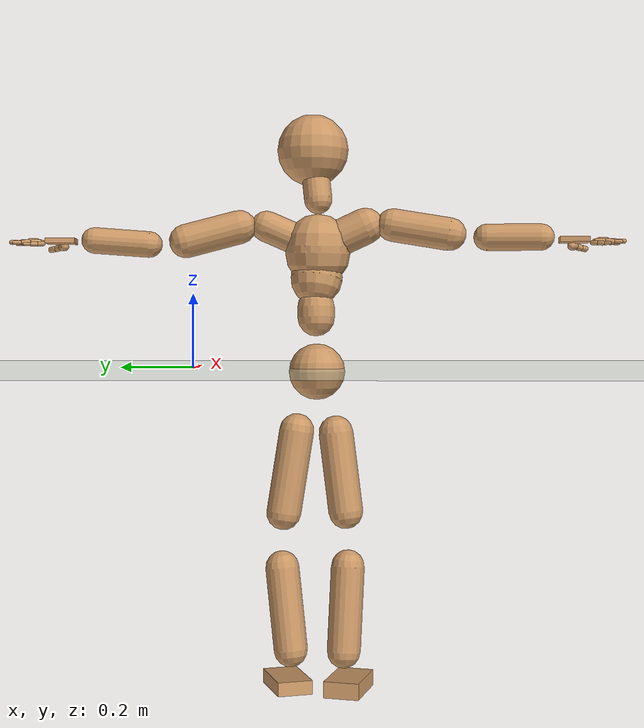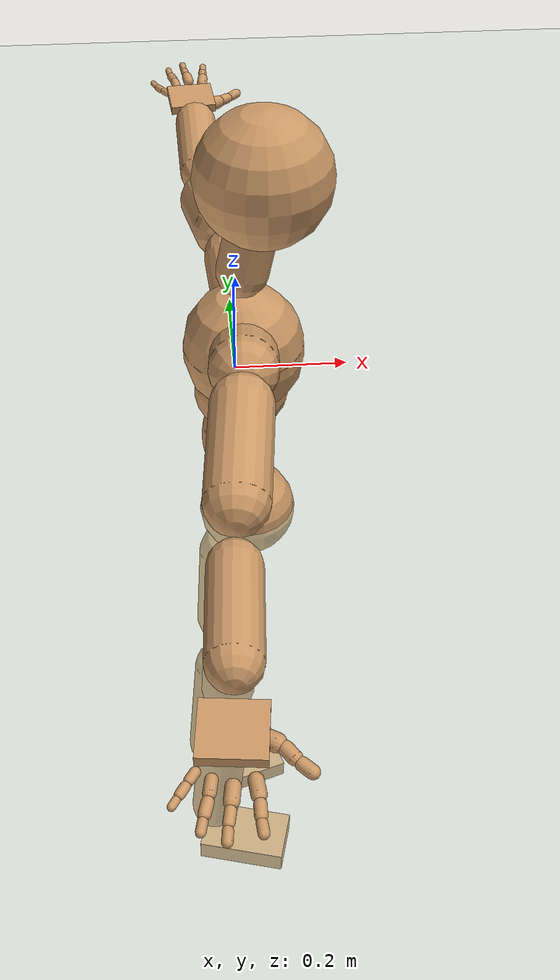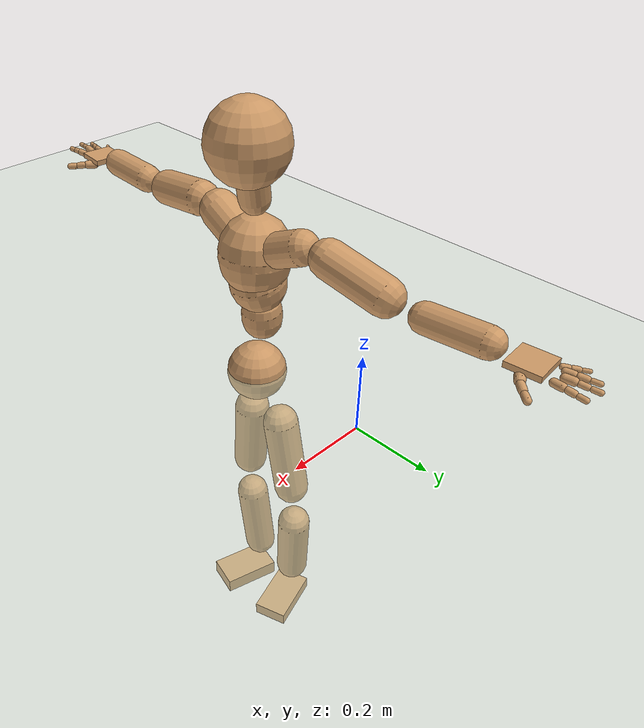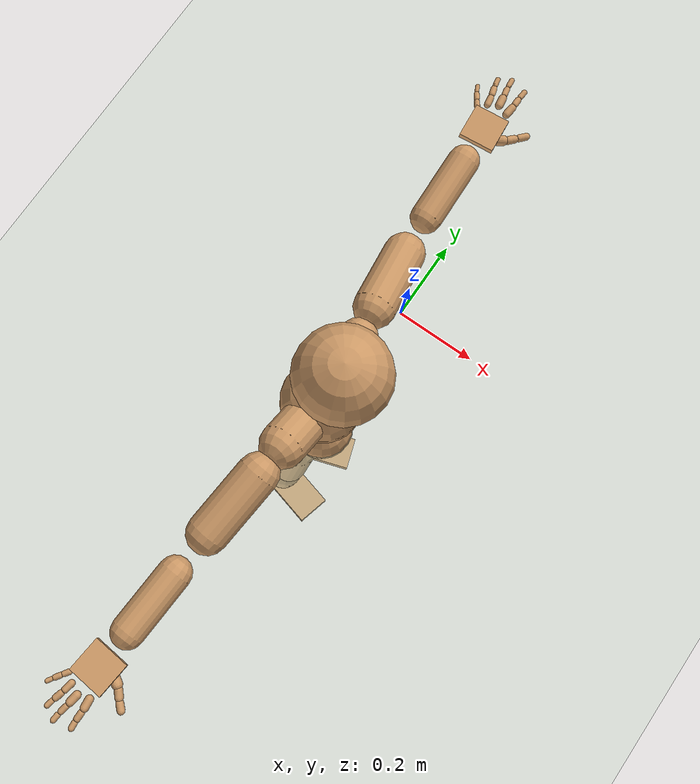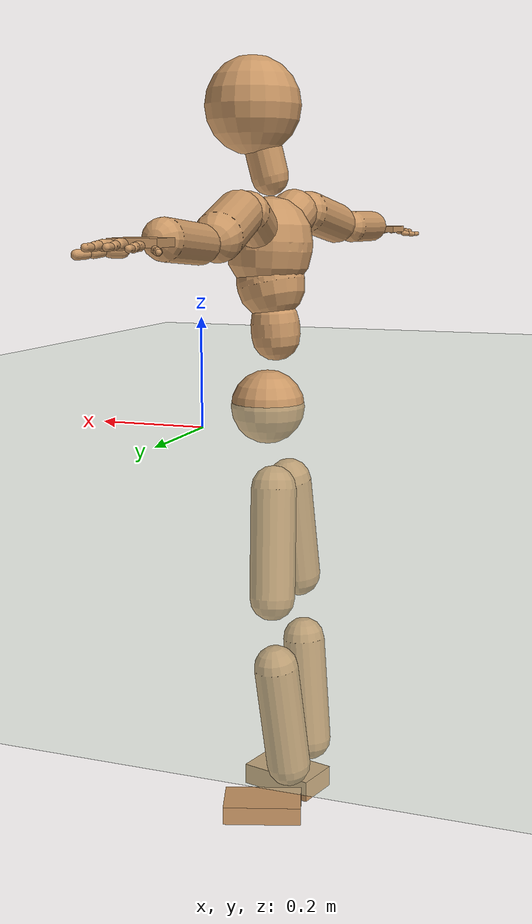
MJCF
<mujoco model="humanoid">
  <compiler coordinate="local" angle="radian"/>
  <default>
    <joint damping="0.0" armature="0.01" stiffness="0.0" limited="true"/>
    <geom conaffinity="1" condim="3" contype="7" margin="0.001" rgba="0.8 0.6 .4 1"/>
  </default>
  <asset>
    <texture type="skybox" builtin="gradient" rgb1=".4 .5 .6" rgb2="0 0 0" width="100" height="100"/>
    <texture builtin="flat" height="1278" mark="cross" markrgb="1 1 1" name="texgeom" random="0.01" rgb1="0.8 0.6 0.4" rgb2="0.8 0.6 0.4" type="cube" width="127"/>
    <texture builtin="checker" height="100" name="texplane" rgb1="0 0 0" rgb2="0.8 0.8 0.8" type="2d" width="100"/>
    <material name="MatPlane" reflectance="0.5" shininess="1" specular="1" texrepeat="60 60" texture="texplane"/>
    <material name="geom" texture="texgeom" texuniform="true"/>
  </asset>
  <worldbody>
    <light cutoff="100" diffuse="1 1 1" dir="-0 0 -1.3" directional="true" exponent="1" pos="0 0 1.3" specular=".1 .1 .1"/>
    <geom conaffinity="1" condim="3" name="floor" pos="0 0 0" rgba="0.8 0.9 0.8 1" size="100 100 .2" type="plane" material="MatPlane"/>
    <body name="Pelvis" pos="0.0002 -0.3375 -0.0112">
      <freejoint name="Pelvis"/>
      <geom type="sphere" contype="1" conaffinity="1" density="500" size="0.0763" pos="0.0000 0.0000 0.0000" name="Pelvis"/>
      <body name="L_Hip" pos="-0.0293 0.0425 -0.085">
        <joint name="L_Hip_x" type="hinge" pos="0 0 0" axis="1 0 0" stiffness="800" damping="80" armature="0.02" range="-180.0000 180.0000"/>
        <joint name="L_Hip_y" type="hinge" pos="0 0 0" axis="0 1 0" stiffness="800" damping="80" armature="0.02" range="-180.0000 180.0000"/>
        <joint name="L_Hip_z" type="hinge" pos="0 0 0" axis="0 0 1" stiffness="800" damping="80" armature="0.02" range="-180.0000 180.0000"/>
        <geom type="capsule" contype="1" conaffinity="1" density="500" fromto="-0.0032 0.0116 -0.0742 -0.0128 0.0463 -0.2967" size="0.0469" name="L_Hip"/>
        <body name="L_Knee" pos="-0.016 0.0579 -0.3709">
          <joint name="L_Knee_x" type="hinge" pos="0 0 0" axis="1 0 0" stiffness="800" damping="80" armature="0.02" range="-180.0000 180.0000"/>
          <joint name="L_Knee_y" type="hinge" pos="0 0 0" axis="0 1 0" stiffness="800" damping="80" armature="0.02" range="-180.0000 180.0000"/>
          <joint name="L_Knee_z" type="hinge" pos="0 0 0" axis="0 0 1" stiffness="800" damping="80" armature="0.02" range="-180.0000 180.0000"/>
          <geom type="capsule" contype="1" conaffinity="1" density="500" fromto="-0.0065 -0.0079 -0.0738 -0.0260 -0.0316 -0.2950" size="0.0458" name="L_Knee"/>
          <body name="L_Ankle" pos="-0.0325 -0.0395 -0.3688">
            <joint name="L_Ankle_x" type="hinge" pos="0 0 0" axis="1 0 0" stiffness="800" damping="80" armature="0.02" range="-180.0000 180.0000"/>
            <joint name="L_Ankle_y" type="hinge" pos="0 0 0" axis="0 1 0" stiffness="800" damping="80" armature="0.02" range="-180.0000 180.0000"/>
            <joint name="L_Ankle_z" type="hinge" pos="0 0 0" axis="0 0 1" stiffness="800" damping="80" armature="0.02" range="-180.0000 180.0000"/>
            <geom type="box" contype="1" conaffinity="1" density="500" pos="0.0610 0.0201 -0.0270" size="0.0817 0.0479 0.019" quat="0.9873 0.0000 0.0000 0.1586" name="L_Ankle"/>
            <body name="L_Toe" pos="0.1219 0.0402 -0.0539">
              <joint name="L_Toe_x" type="hinge" pos="0 0 0" axis="1 0 0" stiffness="500" damping="50" armature="0.02" range="-180.0000 180.0000"/>
              <joint name="L_Toe_y" type="hinge" pos="0 0 0" axis="0 1 0" stiffness="500" damping="50" armature="0.02" range="-180.0000 180.0000"/>
              <joint name="L_Toe_z" type="hinge" pos="0 0 0" axis="0 0 1" stiffness="500" damping="50" armature="0.02" range="-180.0000 180.0000"/>
              <geom type="box" contype="1" conaffinity="1" density="500" pos="0.0000 0.0000 0.0279" size="0.0009 0.0023 0.001" quat="0.9866 0.0000 0.0000 0.1634" name="L_Toe"/>
            </body>
          </body>
        </body>
      </body>
      <body name="R_Hip" pos="-0.0246 -0.0435 -0.0937">
        <joint name="R_Hip_x" type="hinge" pos="0 0 0" axis="1 0 0" stiffness="800" damping="80" armature="0.02" range="-180.0000 180.0000"/>
        <joint name="R_Hip_y" type="hinge" pos="0 0 0" axis="0 1 0" stiffness="800" damping="80" armature="0.02" range="-180.0000 180.0000"/>
        <joint name="R_Hip_z" type="hinge" pos="0 0 0" axis="0 0 1" stiffness="800" damping="80" armature="0.02" range="-180.0000 180.0000"/>
        <geom type="capsule" contype="1" conaffinity="1" density="500" fromto="-0.0042 -0.0090 -0.0712 -0.0168 -0.0359 -0.2846" size="0.0465" name="R_Hip"/>
        <body name="R_Knee" pos="-0.021 -0.0449 -0.3558">
          <joint name="R_Knee_x" type="hinge" pos="0 0 0" axis="1 0 0" stiffness="800" damping="80" armature="0.02" range="-180.0000 180.0000"/>
          <joint name="R_Knee_y" type="hinge" pos="0 0 0" axis="0 1 0" stiffness="800" damping="80" armature="0.02" range="-180.0000 180.0000"/>
          <joint name="R_Knee_z" type="hinge" pos="0 0 0" axis="0 0 1" stiffness="800" damping="80" armature="0.02" range="-180.0000 180.0000"/>
          <geom type="capsule" contype="1" conaffinity="1" density="500" fromto="-0.0064 0.0034 -0.0763 -0.0255 0.0138 -0.3051" size="0.0452" name="R_Knee"/>
          <body name="R_Ankle" pos="-0.0319 0.0172 -0.3814">
            <joint name="R_Ankle_x" type="hinge" pos="0 0 0" axis="1 0 0" stiffness="800" damping="80" armature="0.02" range="-180.0000 180.0000"/>
            <joint name="R_Ankle_y" type="hinge" pos="0 0 0" axis="0 1 0" stiffness="800" damping="80" armature="0.02" range="-180.0000 180.0000"/>
            <joint name="R_Ankle_z" type="hinge" pos="0 0 0" axis="0 0 1" stiffness="800" damping="80" armature="0.02" range="-180.0000 180.0000"/>
            <geom type="box" contype="1" conaffinity="1" density="500" pos="0.0638 -0.0164 -0.0269" size="0.0817 0.0487 0.0226" quat="0.9921 0.0000 0.0000 -0.1254" name="R_Ankle"/>
            <body name="R_Toe" pos="0.1276 -0.0328 -0.0538">
              <joint name="R_Toe_x" type="hinge" pos="0 0 0" axis="1 0 0" stiffness="500" damping="50" armature="0.02" range="-180.0000 180.0000"/>
              <joint name="R_Toe_y" type="hinge" pos="0 0 0" axis="0 1 0" stiffness="500" damping="50" armature="0.02" range="-180.0000 180.0000"/>
              <joint name="R_Toe_z" type="hinge" pos="0 0 0" axis="0 0 1" stiffness="500" damping="50" armature="0.02" range="-180.0000 180.0000"/>
              <geom type="box" contype="1" conaffinity="1" density="500" pos="0.0000 0.0000 0.0242" size="0.0009 0.0023 0.001" quat="0.9932 0.0000 0.0000 -0.1164" name="R_Toe"/>
            </body>
          </body>
        </body>
      </body>
      <body name="Torso" pos="-0.022 0.0006 0.0922">
        <joint name="Torso_x" type="hinge" pos="0 0 0" axis="1 0 0" stiffness="1000" damping="100" armature="0.02" range="-180.0000 180.0000"/>
        <joint name="Torso_y" type="hinge" pos="0 0 0" axis="0 1 0" stiffness="1000" damping="100" armature="0.02" range="-180.0000 180.0000"/>
        <joint name="Torso_z" type="hinge" pos="0 0 0" axis="0 0 1" stiffness="1000" damping="100" armature="0.02" range="-180.0000 180.0000"/>
        <geom type="capsule" contype="1" conaffinity="1" density="500" fromto="0.0053 0.0015 0.0822 0.0035 0.0010 0.0548" size="0.0504" name="Torso"/>
        <body name="Spine" pos="0.0088 0.0024 0.137">
          <joint name="Spine_x" type="hinge" pos="0 0 0" axis="1 0 0" stiffness="1000" damping="100" armature="0.02" range="-180.0000 180.0000"/>
          <joint name="Spine_y" type="hinge" pos="0 0 0" axis="0 1 0" stiffness="1000" damping="100" armature="0.02" range="-180.0000 180.0000"/>
          <joint name="Spine_z" type="hinge" pos="0 0 0" axis="0 0 1" stiffness="1000" damping="100" armature="0.02" range="-180.0000 180.0000"/>
          <geom type="capsule" contype="1" conaffinity="1" density="500" fromto="0.0074 -0.0030 0.0318 0.0049 -0.0020 0.0212" size="0.0698" name="Spine"/>
          <body name="Chest" pos="0.0123 -0.005 0.0529">
            <joint name="Chest_x" type="hinge" pos="0 0 0" axis="1 0 0" stiffness="1000" damping="100" armature="0.02" range="-180.0000 180.0000"/>
            <joint name="Chest_y" type="hinge" pos="0 0 0" axis="0 1 0" stiffness="1000" damping="100" armature="0.02" range="-180.0000 180.0000"/>
            <joint name="Chest_z" type="hinge" pos="0 0 0" axis="0 0 1" stiffness="1000" damping="100" armature="0.02" range="-180.0000 180.0000"/>
            <geom type="capsule" contype="1" conaffinity="1" density="500" fromto="-0.0029 -0.0006 0.0571 -0.0020 -0.0004 0.0381" size="0.0879" name="Chest"/>
            <body name="Neck" pos="-0.0108 -0.0053 0.1482">
              <joint name="Neck_x" type="hinge" pos="0 0 0" axis="1 0 0" stiffness="500" damping="50" armature="0.02" range="-180.0000 180.0000"/>
              <joint name="Neck_y" type="hinge" pos="0 0 0" axis="0 1 0" stiffness="500" damping="50" armature="0.02" range="-180.0000 180.0000"/>
              <joint name="Neck_z" type="hinge" pos="0 0 0" axis="0 0 1" stiffness="500" damping="50" armature="0.02" range="-180.0000 180.0000"/>
              <geom type="capsule" contype="1" conaffinity="1" density="500" fromto="0.0075 0.0038 0.0342 0.0301 0.0152 0.1369" size="0.0377" name="Neck"/>
              <body name="Head" pos="0.0376 0.019 0.1711">
                <joint name="Head_x" type="hinge" pos="0 0 0" axis="1 0 0" stiffness="500" damping="50" armature="0.02" range="-180.0000 180.0000"/>
                <joint name="Head_y" type="hinge" pos="0 0 0" axis="0 1 0" stiffness="500" damping="50" armature="0.02" range="-180.0000 180.0000"/>
                <joint name="Head_z" type="hinge" pos="0 0 0" axis="0 0 1" stiffness="500" damping="50" armature="0.02" range="-180.0000 180.0000"/>
                <geom type="sphere" contype="1" conaffinity="1" density="500" size="0.0964" pos="0.0000 0.0000 0.0000" name="Head"/>
              </body>
            </body>
            <body name="L_Thorax" pos="0.0001 0.0391 0.0686">
              <joint name="L_Thorax_x" type="hinge" pos="0 0 0" axis="1 0 0" stiffness="500" damping="50" armature="0.02" range="-180.0000 180.0000"/>
              <joint name="L_Thorax_y" type="hinge" pos="0 0 0" axis="0 1 0" stiffness="500" damping="50" armature="0.02" range="-180.0000 180.0000"/>
              <joint name="L_Thorax_z" type="hinge" pos="0 0 0" axis="0 0 1" stiffness="500" damping="50" armature="0.02" range="-180.0000 180.0000"/>
              <geom type="capsule" contype="1" conaffinity="1" density="500" fromto="-0.0027 0.0247 0.0106 -0.0110 0.0987 0.0425" size="0.0417" name="L_Thorax"/>
              <body name="L_Shoulder" pos="-0.0137 0.1233 0.0532">
                <joint name="L_Shoulder_x" type="hinge" pos="0 0 0" axis="1 0 0" stiffness="500" damping="50" armature="0.02" range="-180.0000 180.0000"/>
                <joint name="L_Shoulder_y" type="hinge" pos="0 0 0" axis="0 1 0" stiffness="500" damping="50" armature="0.02" range="-180.0000 180.0000"/>
                <joint name="L_Shoulder_z" type="hinge" pos="0 0 0" axis="0 0 1" stiffness="500" damping="50" armature="0.02" range="-180.0000 180.0000"/>
                <geom type="capsule" contype="1" conaffinity="1" density="500" fromto="-0.0063 0.0478 -0.0130 -0.0252 0.1911 -0.0518" size="0.0452" name="L_Shoulder"/>
                <body name="L_Elbow" pos="-0.0315 0.2389 -0.0648">
                  <joint name="L_Elbow_x" type="hinge" pos="0 0 0" axis="1 0 0" stiffness="500" damping="50" armature="0.02" range="-720.0000 720.0000"/>
                  <joint name="L_Elbow_y" type="hinge" pos="0 0 0" axis="0 1 0" stiffness="500" damping="50" armature="0.02" range="-720.0000 720.0000"/>
                  <joint name="L_Elbow_z" type="hinge" pos="0 0 0" axis="0 0 1" stiffness="500" damping="50" armature="0.02" range="-720.0000 720.0000"/>
                  <geom type="capsule" contype="1" conaffinity="1" density="500" fromto="-0.0013 0.0493 0.0037 -0.0053 0.1973 0.0146" size="0.0348" name="L_Elbow"/>
                  <body name="L_Wrist" pos="-0.0067 0.2466 0.0183">
                    <joint name="L_Wrist_x" type="hinge" pos="0 0 0" axis="1 0 0" stiffness="300" damping="30" armature="0.02" range="-180.0000 180.0000"/>
                    <joint name="L_Wrist_y" type="hinge" pos="0 0 0" axis="0 1 0" stiffness="300" damping="30" armature="0.02" range="-180.0000 180.0000"/>
                    <joint name="L_Wrist_z" type="hinge" pos="0 0 0" axis="0 0 1" stiffness="300" damping="30" armature="0.02" range="-180.0000 180.0000"/>
                    <geom type="box" contype="1" conaffinity="1" density="500" pos="-0.0035 0.0390 -0.0061" size="0.039 0.0392 0.0069" quat="0.7382 0.0000 0.0000 -0.6746" name="L_Wrist"/>
                    <body name="L_Index1" pos="0.0172 0.0914 -0.0094">
                      <joint name="L_Index1_x" type="hinge" pos="0 0 0" axis="1 0 0" stiffness="100" damping="10" armature="0.02" range="-180.0000 180.0000"/>
                      <joint name="L_Index1_y" type="hinge" pos="0 0 0" axis="0 1 0" stiffness="100" damping="10" armature="0.02" range="-180.0000 180.0000"/>
                      <joint name="L_Index1_z" type="hinge" pos="0 0 0" axis="0 0 1" stiffness="100" damping="10" armature="0.02" range="-180.0000 180.0000"/>
                      <geom type="capsule" contype="1" conaffinity="1" density="500" fromto="0.0006 0.0062 0.0003 0.0026 0.0249 0.0011" size="0.0088" name="L_Index1"/>
                      <body name="L_Index2" pos="0.0032 0.0311 0.0014">
                        <joint name="L_Index2_x" type="hinge" pos="0 0 0" axis="1 0 0" stiffness="100" damping="10" armature="0.02" range="-180.0000 180.0000"/>
                        <joint name="L_Index2_y" type="hinge" pos="0 0 0" axis="0 1 0" stiffness="100" damping="10" armature="0.02" range="-180.0000 180.0000"/>
                        <joint name="L_Index2_z" type="hinge" pos="0 0 0" axis="0 0 1" stiffness="100" damping="10" armature="0.02" range="-180.0000 180.0000"/>
                        <geom type="capsule" contype="1" conaffinity="1" density="500" fromto="-0.0000 0.0044 -0.0005 -0.0001 0.0176 -0.0018" size="0.0072" name="L_Index2"/>
                        <body name="L_Index3" pos="-0.0001 0.022 -0.0023">
                          <joint name="L_Index3_x" type="hinge" pos="0 0 0" axis="1 0 0" stiffness="100" damping="10" armature="0.02" range="-180.0000 180.0000"/>
                          <joint name="L_Index3_y" type="hinge" pos="0 0 0" axis="0 1 0" stiffness="100" damping="10" armature="0.02" range="-180.0000 180.0000"/>
                          <joint name="L_Index3_z" type="hinge" pos="0 0 0" axis="0 0 1" stiffness="100" damping="10" armature="0.02" range="-180.0000 180.0000"/>
                          <geom type="capsule" contype="1" conaffinity="1" density="500" fromto="0.0004 0.0048 -0.0001 0.0015 0.0192 -0.0002" size="0.0061" name="L_Index3"/>
                        </body>
                      </body>
                    </body>
                    <body name="L_Middle1" pos="-0.0055 0.0992 -0.0074">
                      <joint name="L_Middle1_x" type="hinge" pos="0 0 0" axis="1 0 0" stiffness="100" damping="10" armature="0.02" range="-180.0000 180.0000"/>
                      <joint name="L_Middle1_y" type="hinge" pos="0 0 0" axis="0 1 0" stiffness="100" damping="10" armature="0.02" range="-180.0000 180.0000"/>
                      <joint name="L_Middle1_z" type="hinge" pos="0 0 0" axis="0 0 1" stiffness="100" damping="10" armature="0.02" range="-180.0000 180.0000"/>
                      <geom type="capsule" contype="1" conaffinity="1" density="500" fromto="-0.0009 0.0059 0.0000 -0.0035 0.0237 0.0001" size="0.0089" name="L_Middle1"/>
                      <body name="L_Middle2" pos="-0.0043 0.0296 0.0001">
                        <joint name="L_Middle2_x" type="hinge" pos="0 0 0" axis="1 0 0" stiffness="100" damping="10" armature="0.02" range="-180.0000 180.0000"/>
                        <joint name="L_Middle2_y" type="hinge" pos="0 0 0" axis="0 1 0" stiffness="100" damping="10" armature="0.02" range="-180.0000 180.0000"/>
                        <joint name="L_Middle2_z" type="hinge" pos="0 0 0" axis="0 0 1" stiffness="100" damping="10" armature="0.02" range="-180.0000 180.0000"/>
                        <geom type="capsule" contype="1" conaffinity="1" density="500" fromto="-0.0008 0.0045 -0.0004 -0.0033 0.0182 -0.0017" size="0.0066" name="L_Middle2"/>
                        <body name="L_Middle3" pos="-0.0042 0.0227 -0.0022">
                          <joint name="L_Middle3_x" type="hinge" pos="0 0 0" axis="1 0 0" stiffness="100" damping="10" armature="0.02" range="-180.0000 180.0000"/>
                          <joint name="L_Middle3_y" type="hinge" pos="0 0 0" axis="0 1 0" stiffness="100" damping="10" armature="0.02" range="-180.0000 180.0000"/>
                          <joint name="L_Middle3_z" type="hinge" pos="0 0 0" axis="0 0 1" stiffness="100" damping="10" armature="0.02" range="-180.0000 180.0000"/>
                          <geom type="capsule" contype="1" conaffinity="1" density="500" fromto="-0.0004 0.0049 -0.0000 -0.0017 0.0198 -0.0001" size="0.0059" name="L_Middle3"/>
                        </body>
                      </body>
                    </body>
                    <body name="L_Pinky1" pos="-0.0432 0.0765 -0.015">
                      <joint name="L_Pinky1_x" type="hinge" pos="0 0 0" axis="1 0 0" stiffness="100" damping="10" armature="0.02" range="-180.0000 180.0000"/>
                      <joint name="L_Pinky1_y" type="hinge" pos="0 0 0" axis="0 1 0" stiffness="100" damping="10" armature="0.02" range="-180.0000 180.0000"/>
                      <joint name="L_Pinky1_z" type="hinge" pos="0 0 0" axis="0 0 1" stiffness="100" damping="10" armature="0.02" range="-180.0000 180.0000"/>
                      <geom type="capsule" contype="1" conaffinity="1" density="500" fromto="-0.0022 0.0032 -0.0003 -0.0087 0.0126 -0.0012" size="0.0062" name="L_Pinky1"/>
                      <body name="L_Pinky2" pos="-0.0109 0.0158 -0.0015">
                        <joint name="L_Pinky2_x" type="hinge" pos="0 0 0" axis="1 0 0" stiffness="100" damping="10" armature="0.02" range="-180.0000 180.0000"/>
                        <joint name="L_Pinky2_y" type="hinge" pos="0 0 0" axis="0 1 0" stiffness="100" damping="10" armature="0.02" range="-180.0000 180.0000"/>
                        <joint name="L_Pinky2_z" type="hinge" pos="0 0 0" axis="0 0 1" stiffness="100" damping="10" armature="0.02" range="-180.0000 180.0000"/>
                        <geom type="capsule" contype="1" conaffinity="1" density="500" fromto="-0.0021 0.0031 -0.0003 -0.0083 0.0125 -0.0011" size="0.0061" name="L_Pinky2"/>
                        <body name="L_Pinky3" pos="-0.0104 0.0156 -0.0014">
                          <joint name="L_Pinky3_x" type="hinge" pos="0 0 0" axis="1 0 0" stiffness="100" damping="10" armature="0.02" range="-180.0000 180.0000"/>
                          <joint name="L_Pinky3_y" type="hinge" pos="0 0 0" axis="0 1 0" stiffness="100" damping="10" armature="0.02" range="-180.0000 180.0000"/>
                          <joint name="L_Pinky3_z" type="hinge" pos="0 0 0" axis="0 0 1" stiffness="100" damping="10" armature="0.02" range="-180.0000 180.0000"/>
                          <geom type="capsule" contype="1" conaffinity="1" density="500" fromto="-0.0017 0.0035 0.0001 -0.0067 0.0141 0.0005" size="0.0047" name="L_Pinky3"/>
                        </body>
                      </body>
                    </body>
                    <body name="L_Ring1" pos="-0.0277 0.0885 -0.0102">
                      <joint name="L_Ring1_x" type="hinge" pos="0 0 0" axis="1 0 0" stiffness="100" damping="10" armature="0.02" range="-180.0000 180.0000"/>
                      <joint name="L_Ring1_y" type="hinge" pos="0 0 0" axis="0 1 0" stiffness="100" damping="10" armature="0.02" range="-180.0000 180.0000"/>
                      <joint name="L_Ring1_z" type="hinge" pos="0 0 0" axis="0 0 1" stiffness="100" damping="10" armature="0.02" range="-180.0000 180.0000"/>
                      <geom type="capsule" contype="1" conaffinity="1" density="500" fromto="-0.0009 0.0054 0.0001 -0.0038 0.0217 0.0002" size="0.0075" name="L_Ring1"/>
                      <body name="L_Ring2" pos="-0.0047 0.0271 0.0003">
                        <joint name="L_Ring2_x" type="hinge" pos="0 0 0" axis="1 0 0" stiffness="100" damping="10" armature="0.02" range="-180.0000 180.0000"/>
                        <joint name="L_Ring2_y" type="hinge" pos="0 0 0" axis="0 1 0" stiffness="100" damping="10" armature="0.02" range="-180.0000 180.0000"/>
                        <joint name="L_Ring2_z" type="hinge" pos="0 0 0" axis="0 0 1" stiffness="100" damping="10" armature="0.02" range="-180.0000 180.0000"/>
                        <geom type="capsule" contype="1" conaffinity="1" density="500" fromto="-0.0013 0.0044 -0.0004 -0.0051 0.0178 -0.0016" size="0.0072" name="L_Ring2"/>
                        <body name="L_Ring3" pos="-0.0064 0.0222 -0.002">
                          <joint name="L_Ring3_x" type="hinge" pos="0 0 0" axis="1 0 0" stiffness="100" damping="10" armature="0.02" range="-180.0000 180.0000"/>
                          <joint name="L_Ring3_y" type="hinge" pos="0 0 0" axis="0 1 0" stiffness="100" damping="10" armature="0.02" range="-180.0000 180.0000"/>
                          <joint name="L_Ring3_z" type="hinge" pos="0 0 0" axis="0 0 1" stiffness="100" damping="10" armature="0.02" range="-180.0000 180.0000"/>
                          <geom type="capsule" contype="1" conaffinity="1" density="500" fromto="-0.0009 0.0048 0.0000 -0.0035 0.0194 0.0000" size="0.0056" name="L_Ring3"/>
                        </body>
                      </body>
                    </body>
                    <body name="L_Thumb1" pos="0.0239 0.0345 -0.0191">
                      <joint name="L_Thumb1_x" type="hinge" pos="0 0 0" axis="1 0 0" stiffness="100" damping="10" armature="0.02" range="-180.0000 180.0000"/>
                      <joint name="L_Thumb1_y" type="hinge" pos="0 0 0" axis="0 1 0" stiffness="100" damping="10" armature="0.02" range="-180.0000 180.0000"/>
                      <joint name="L_Thumb1_z" type="hinge" pos="0 0 0" axis="0 0 1" stiffness="100" damping="10" armature="0.02" range="-180.0000 180.0000"/>
                      <geom type="capsule" contype="1" conaffinity="1" density="500" fromto="0.0051 0.0030 0.0002 0.0202 0.0120 0.0009" size="0.0113" name="L_Thumb1"/>
                      <body name="L_Thumb2" pos="0.0253 0.015 0.0011">
                        <joint name="L_Thumb2_x" type="hinge" pos="0 0 0" axis="1 0 0" stiffness="100" damping="10" armature="0.02" range="-180.0000 180.0000"/>
                        <joint name="L_Thumb2_y" type="hinge" pos="0 0 0" axis="0 1 0" stiffness="100" damping="10" armature="0.02" range="-180.0000 180.0000"/>
                        <joint name="L_Thumb2_z" type="hinge" pos="0 0 0" axis="0 0 1" stiffness="100" damping="10" armature="0.02" range="-180.0000 180.0000"/>
                        <geom type="capsule" contype="1" conaffinity="1" density="500" fromto="0.0032 0.0038 -0.0008 0.0128 0.0154 -0.0033" size="0.0089" name="L_Thumb2"/>
                        <body name="L_Thumb3" pos="0.016 0.0192 -0.0041">
                          <joint name="L_Thumb3_x" type="hinge" pos="0 0 0" axis="1 0 0" stiffness="100" damping="10" armature="0.02" range="-180.0000 180.0000"/>
                          <joint name="L_Thumb3_y" type="hinge" pos="0 0 0" axis="0 1 0" stiffness="100" damping="10" armature="0.02" range="-180.0000 180.0000"/>
                          <joint name="L_Thumb3_z" type="hinge" pos="0 0 0" axis="0 0 1" stiffness="100" damping="10" armature="0.02" range="-180.0000 180.0000"/>
                          <geom type="capsule" contype="1" conaffinity="1" density="500" fromto="0.0036 0.0042 -0.0004 0.0144 0.0170 -0.0017" size="0.008" name="L_Thumb3"/>
                        </body>
                      </body>
                    </body>
                  </body>
                </body>
              </body>
            </body>
            <body name="R_Thorax" pos="-0.0039 -0.0367 0.0688">
              <joint name="R_Thorax_x" type="hinge" pos="0 0 0" axis="1 0 0" stiffness="500" damping="50" armature="0.02" range="-180.0000 180.0000"/>
              <joint name="R_Thorax_y" type="hinge" pos="0 0 0" axis="0 1 0" stiffness="500" damping="50" armature="0.02" range="-180.0000 180.0000"/>
              <joint name="R_Thorax_z" type="hinge" pos="0 0 0" axis="0 0 1" stiffness="500" damping="50" armature="0.02" range="-180.0000 180.0000"/>
              <geom type="capsule" contype="1" conaffinity="1" density="500" fromto="-0.0014 -0.0231 0.0107 -0.0055 -0.0925 0.0426" size="0.049" name="R_Thorax"/>
              <body name="R_Shoulder" pos="-0.0069 -0.1156 0.0533">
                <joint name="R_Shoulder_x" type="hinge" pos="0 0 0" axis="1 0 0" stiffness="500" damping="50" armature="0.02" range="-180.0000 180.0000"/>
                <joint name="R_Shoulder_y" type="hinge" pos="0 0 0" axis="0 1 0" stiffness="500" damping="50" armature="0.02" range="-180.0000 180.0000"/>
                <joint name="R_Shoulder_z" type="hinge" pos="0 0 0" axis="0 0 1" stiffness="500" damping="50" armature="0.02" range="-180.0000 180.0000"/>
                <geom type="capsule" contype="1" conaffinity="1" density="500" fromto="-0.0053 -0.0507 -0.0086 -0.0210 -0.2028 -0.0345" size="0.0442" name="R_Shoulder"/>
                <body name="R_Elbow" pos="-0.0263 -0.2535 -0.0432">
                  <joint name="R_Elbow_x" type="hinge" pos="0 0 0" axis="1 0 0" stiffness="500" damping="50" armature="0.02" range="-720.0000 720.0000"/>
                  <joint name="R_Elbow_y" type="hinge" pos="0 0 0" axis="0 1 0" stiffness="500" damping="50" armature="0.02" range="-720.0000 720.0000"/>
                  <joint name="R_Elbow_z" type="hinge" pos="0 0 0" axis="0 0 1" stiffness="500" damping="50" armature="0.02" range="-720.0000 720.0000"/>
                  <geom type="capsule" contype="1" conaffinity="1" density="500" fromto="-0.0028 -0.0477 -0.0002 -0.0111 -0.1909 -0.0006" size="0.0356" name="R_Elbow"/>
                  <body name="R_Wrist" pos="-0.0138 -0.2386 -0.0008">
                    <joint name="R_Wrist_x" type="hinge" pos="0 0 0" axis="1 0 0" stiffness="300" damping="30" armature="0.02" range="-180.0000 180.0000"/>
                    <joint name="R_Wrist_y" type="hinge" pos="0 0 0" axis="0 1 0" stiffness="300" damping="30" armature="0.02" range="-180.0000 180.0000"/>
                    <joint name="R_Wrist_z" type="hinge" pos="0 0 0" axis="0 0 1" stiffness="300" damping="30" armature="0.02" range="-180.0000 180.0000"/>
                    <geom type="box" contype="1" conaffinity="1" density="500" pos="-0.0039 -0.0390 -0.0076" size="0.039 0.04 0.007" quat="0.7418 0.0000 0.0000 0.6706" name="R_Wrist"/>
                    <body name="R_Index1" pos="0.0164 -0.0913 -0.0124">
                      <joint name="R_Index1_x" type="hinge" pos="0 0 0" axis="1 0 0" stiffness="100" damping="10" armature="0.02" range="-180.0000 180.0000"/>
                      <joint name="R_Index1_y" type="hinge" pos="0 0 0" axis="0 1 0" stiffness="100" damping="10" armature="0.02" range="-180.0000 180.0000"/>
                      <joint name="R_Index1_z" type="hinge" pos="0 0 0" axis="0 0 1" stiffness="100" damping="10" armature="0.02" range="-180.0000 180.0000"/>
                      <geom type="capsule" contype="1" conaffinity="1" density="500" fromto="0.0006 -0.0062 0.0003 0.0026 -0.0249 0.0011" size="0.0088" name="R_Index1"/>
                      <body name="R_Index2" pos="0.0032 -0.0311 0.0014">
                        <joint name="R_Index2_x" type="hinge" pos="0 0 0" axis="1 0 0" stiffness="100" damping="10" armature="0.02" range="-180.0000 180.0000"/>
                        <joint name="R_Index2_y" type="hinge" pos="0 0 0" axis="0 1 0" stiffness="100" damping="10" armature="0.02" range="-180.0000 180.0000"/>
                        <joint name="R_Index2_z" type="hinge" pos="0 0 0" axis="0 0 1" stiffness="100" damping="10" armature="0.02" range="-180.0000 180.0000"/>
                        <geom type="capsule" contype="1" conaffinity="1" density="500" fromto="-0.0000 -0.0044 -0.0005 -0.0001 -0.0176 -0.0018" size="0.0072" name="R_Index2"/>
                        <body name="R_Index3" pos="-0.0001 -0.022 -0.0023">
                          <joint name="R_Index3_x" type="hinge" pos="0 0 0" axis="1 0 0" stiffness="100" damping="10" armature="0.02" range="-180.0000 180.0000"/>
                          <joint name="R_Index3_y" type="hinge" pos="0 0 0" axis="0 1 0" stiffness="100" damping="10" armature="0.02" range="-180.0000 180.0000"/>
                          <joint name="R_Index3_z" type="hinge" pos="0 0 0" axis="0 0 1" stiffness="100" damping="10" armature="0.02" range="-180.0000 180.0000"/>
                          <geom type="capsule" contype="1" conaffinity="1" density="500" fromto="0.0004 -0.0040 -0.0001 0.0015 -0.0160 -0.0002" size="0.0064" name="R_Index3"/>
                        </body>
                      </body>
                    </body>
                    <body name="R_Middle1" pos="-0.0064 -0.0991 -0.0103">
                      <joint name="R_Middle1_x" type="hinge" pos="0 0 0" axis="1 0 0" stiffness="100" damping="10" armature="0.02" range="-180.0000 180.0000"/>
                      <joint name="R_Middle1_y" type="hinge" pos="0 0 0" axis="0 1 0" stiffness="100" damping="10" armature="0.02" range="-180.0000 180.0000"/>
                      <joint name="R_Middle1_z" type="hinge" pos="0 0 0" axis="0 0 1" stiffness="100" damping="10" armature="0.02" range="-180.0000 180.0000"/>
                      <geom type="capsule" contype="1" conaffinity="1" density="500" fromto="-0.0009 -0.0059 0.0000 -0.0035 -0.0237 0.0001" size="0.0089" name="R_Middle1"/>
                      <body name="R_Middle2" pos="-0.0043 -0.0296 0.0001">
                        <joint name="R_Middle2_x" type="hinge" pos="0 0 0" axis="1 0 0" stiffness="100" damping="10" armature="0.02" range="-180.0000 180.0000"/>
                        <joint name="R_Middle2_y" type="hinge" pos="0 0 0" axis="0 1 0" stiffness="100" damping="10" armature="0.02" range="-180.0000 180.0000"/>
                        <joint name="R_Middle2_z" type="hinge" pos="0 0 0" axis="0 0 1" stiffness="100" damping="10" armature="0.02" range="-180.0000 180.0000"/>
                        <geom type="capsule" contype="1" conaffinity="1" density="500" fromto="-0.0008 -0.0045 -0.0004 -0.0033 -0.0182 -0.0017" size="0.0066" name="R_Middle2"/>
                        <body name="R_Middle3" pos="-0.0042 -0.0227 -0.0022">
                          <joint name="R_Middle3_x" type="hinge" pos="0 0 0" axis="1 0 0" stiffness="100" damping="10" armature="0.02" range="-180.0000 180.0000"/>
                          <joint name="R_Middle3_y" type="hinge" pos="0 0 0" axis="0 1 0" stiffness="100" damping="10" armature="0.02" range="-180.0000 180.0000"/>
                          <joint name="R_Middle3_z" type="hinge" pos="0 0 0" axis="0 0 1" stiffness="100" damping="10" armature="0.02" range="-180.0000 180.0000"/>
                          <geom type="capsule" contype="1" conaffinity="1" density="500" fromto="-0.0004 -0.0041 -0.0000 -0.0017 -0.0166 -0.0001" size="0.0062" name="R_Middle3"/>
                        </body>
                      </body>
                    </body>
                    <body name="R_Pinky1" pos="-0.044 -0.0764 -0.0179">
                      <joint name="R_Pinky1_x" type="hinge" pos="0 0 0" axis="1 0 0" stiffness="100" damping="10" armature="0.02" range="-180.0000 180.0000"/>
                      <joint name="R_Pinky1_y" type="hinge" pos="0 0 0" axis="0 1 0" stiffness="100" damping="10" armature="0.02" range="-180.0000 180.0000"/>
                      <joint name="R_Pinky1_z" type="hinge" pos="0 0 0" axis="0 0 1" stiffness="100" damping="10" armature="0.02" range="-180.0000 180.0000"/>
                      <geom type="capsule" contype="1" conaffinity="1" density="500" fromto="-0.0022 -0.0032 -0.0003 -0.0087 -0.0126 -0.0012" size="0.0062" name="R_Pinky1"/>
                      <body name="R_Pinky2" pos="-0.0109 -0.0158 -0.0015">
                        <joint name="R_Pinky2_x" type="hinge" pos="0 0 0" axis="1 0 0" stiffness="100" damping="10" armature="0.02" range="-180.0000 180.0000"/>
                        <joint name="R_Pinky2_y" type="hinge" pos="0 0 0" axis="0 1 0" stiffness="100" damping="10" armature="0.02" range="-180.0000 180.0000"/>
                        <joint name="R_Pinky2_z" type="hinge" pos="0 0 0" axis="0 0 1" stiffness="100" damping="10" armature="0.02" range="-180.0000 180.0000"/>
                        <geom type="capsule" contype="1" conaffinity="1" density="500" fromto="-0.0021 -0.0031 -0.0003 -0.0083 -0.0125 -0.0011" size="0.0061" name="R_Pinky2"/>
                        <body name="R_Pinky3" pos="-0.0104 -0.0156 -0.0014">
                          <joint name="R_Pinky3_x" type="hinge" pos="0 0 0" axis="1 0 0" stiffness="100" damping="10" armature="0.02" range="-180.0000 180.0000"/>
                          <joint name="R_Pinky3_y" type="hinge" pos="0 0 0" axis="0 1 0" stiffness="100" damping="10" armature="0.02" range="-180.0000 180.0000"/>
                          <joint name="R_Pinky3_z" type="hinge" pos="0 0 0" axis="0 0 1" stiffness="100" damping="10" armature="0.02" range="-180.0000 180.0000"/>
                          <geom type="capsule" contype="1" conaffinity="1" density="500" fromto="-0.0017 -0.0027 0.0001 -0.0067 -0.0109 0.0005" size="0.0049" name="R_Pinky3"/>
                        </body>
                      </body>
                    </body>
                    <body name="R_Ring1" pos="-0.0285 -0.0884 -0.0131">
                      <joint name="R_Ring1_x" type="hinge" pos="0 0 0" axis="1 0 0" stiffness="100" damping="10" armature="0.02" range="-180.0000 180.0000"/>
                      <joint name="R_Ring1_y" type="hinge" pos="0 0 0" axis="0 1 0" stiffness="100" damping="10" armature="0.02" range="-180.0000 180.0000"/>
                      <joint name="R_Ring1_z" type="hinge" pos="0 0 0" axis="0 0 1" stiffness="100" damping="10" armature="0.02" range="-180.0000 180.0000"/>
                      <geom type="capsule" contype="1" conaffinity="1" density="500" fromto="-0.0009 -0.0054 0.0001 -0.0038 -0.0217 0.0002" size="0.0075" name="R_Ring1"/>
                      <body name="R_Ring2" pos="-0.0047 -0.0271 0.0003">
                        <joint name="R_Ring2_x" type="hinge" pos="0 0 0" axis="1 0 0" stiffness="100" damping="10" armature="0.02" range="-180.0000 180.0000"/>
                        <joint name="R_Ring2_y" type="hinge" pos="0 0 0" axis="0 1 0" stiffness="100" damping="10" armature="0.02" range="-180.0000 180.0000"/>
                        <joint name="R_Ring2_z" type="hinge" pos="0 0 0" axis="0 0 1" stiffness="100" damping="10" armature="0.02" range="-180.0000 180.0000"/>
                        <geom type="capsule" contype="1" conaffinity="1" density="500" fromto="-0.0013 -0.0044 -0.0004 -0.0051 -0.0178 -0.0016" size="0.0072" name="R_Ring2"/>
                        <body name="R_Ring3" pos="-0.0064 -0.0222 -0.002">
                          <joint name="R_Ring3_x" type="hinge" pos="0 0 0" axis="1 0 0" stiffness="100" damping="10" armature="0.02" range="-180.0000 180.0000"/>
                          <joint name="R_Ring3_y" type="hinge" pos="0 0 0" axis="0 1 0" stiffness="100" damping="10" armature="0.02" range="-180.0000 180.0000"/>
                          <joint name="R_Ring3_z" type="hinge" pos="0 0 0" axis="0 0 1" stiffness="100" damping="10" armature="0.02" range="-180.0000 180.0000"/>
                          <geom type="capsule" contype="1" conaffinity="1" density="500" fromto="-0.0009 -0.0040 0.0000 -0.0035 -0.0162 0.0000" size="0.0058" name="R_Ring3"/>
                        </body>
                      </body>
                    </body>
                    <body name="R_Thumb1" pos="0.0231 -0.0344 -0.0221">
                      <joint name="R_Thumb1_x" type="hinge" pos="0 0 0" axis="1 0 0" stiffness="100" damping="10" armature="0.02" range="-180.0000 180.0000"/>
                      <joint name="R_Thumb1_y" type="hinge" pos="0 0 0" axis="0 1 0" stiffness="100" damping="10" armature="0.02" range="-180.0000 180.0000"/>
                      <joint name="R_Thumb1_z" type="hinge" pos="0 0 0" axis="0 0 1" stiffness="100" damping="10" armature="0.02" range="-180.0000 180.0000"/>
                      <geom type="capsule" contype="1" conaffinity="1" density="500" fromto="0.0051 -0.0030 0.0002 0.0202 -0.0120 0.0009" size="0.0113" name="R_Thumb1"/>
                      <body name="R_Thumb2" pos="0.0253 -0.015 0.0011">
                        <joint name="R_Thumb2_x" type="hinge" pos="0 0 0" axis="1 0 0" stiffness="100" damping="10" armature="0.02" range="-180.0000 180.0000"/>
                        <joint name="R_Thumb2_y" type="hinge" pos="0 0 0" axis="0 1 0" stiffness="100" damping="10" armature="0.02" range="-180.0000 180.0000"/>
                        <joint name="R_Thumb2_z" type="hinge" pos="0 0 0" axis="0 0 1" stiffness="100" damping="10" armature="0.02" range="-180.0000 180.0000"/>
                        <geom type="capsule" contype="1" conaffinity="1" density="500" fromto="0.0032 -0.0038 -0.0008 0.0128 -0.0154 -0.0033" size="0.0089" name="R_Thumb2"/>
                        <body name="R_Thumb3" pos="0.016 -0.0192 -0.0041">
                          <joint name="R_Thumb3_x" type="hinge" pos="0 0 0" axis="1 0 0" stiffness="100" damping="10" armature="0.02" range="-180.0000 180.0000"/>
                          <joint name="R_Thumb3_y" type="hinge" pos="0 0 0" axis="0 1 0" stiffness="100" damping="10" armature="0.02" range="-180.0000 180.0000"/>
                          <joint name="R_Thumb3_z" type="hinge" pos="0 0 0" axis="0 0 1" stiffness="100" damping="10" armature="0.02" range="-180.0000 180.0000"/>
                          <geom type="capsule" contype="1" conaffinity="1" density="500" fromto="0.0036 -0.0034 -0.0004 0.0144 -0.0138 -0.0017" size="0.0083" name="R_Thumb3"/>
                        </body>
                      </body>
                    </body>
                  </body>
                </body>
              </body>
            </body>
          </body>
        </body>
      </body>
    </body>
  </worldbody>
  <actuator>
    <motor name="L_Hip_x" joint="L_Hip_x" gear="500"/>
    <motor name="L_Hip_y" joint="L_Hip_y" gear="500"/>
    <motor name="L_Hip_z" joint="L_Hip_z" gear="500"/>
    <motor name="L_Knee_x" joint="L_Knee_x" gear="500"/>
    <motor name="L_Knee_y" joint="L_Knee_y" gear="500"/>
    <motor name="L_Knee_z" joint="L_Knee_z" gear="500"/>
    <motor name="L_Ankle_x" joint="L_Ankle_x" gear="500"/>
    <motor name="L_Ankle_y" joint="L_Ankle_y" gear="500"/>
    <motor name="L_Ankle_z" joint="L_Ankle_z" gear="500"/>
    <motor name="L_Toe_x" joint="L_Toe_x" gear="500"/>
    <motor name="L_Toe_y" joint="L_Toe_y" gear="500"/>
    <motor name="L_Toe_z" joint="L_Toe_z" gear="500"/>
    <motor name="R_Hip_x" joint="R_Hip_x" gear="500"/>
    <motor name="R_Hip_y" joint="R_Hip_y" gear="500"/>
    <motor name="R_Hip_z" joint="R_Hip_z" gear="500"/>
    <motor name="R_Knee_x" joint="R_Knee_x" gear="500"/>
    <motor name="R_Knee_y" joint="R_Knee_y" gear="500"/>
    <motor name="R_Knee_z" joint="R_Knee_z" gear="500"/>
    <motor name="R_Ankle_x" joint="R_Ankle_x" gear="500"/>
    <motor name="R_Ankle_y" joint="R_Ankle_y" gear="500"/>
    <motor name="R_Ankle_z" joint="R_Ankle_z" gear="500"/>
    <motor name="R_Toe_x" joint="R_Toe_x" gear="500"/>
    <motor name="R_Toe_y" joint="R_Toe_y" gear="500"/>
    <motor name="R_Toe_z" joint="R_Toe_z" gear="500"/>
    <motor name="Torso_x" joint="Torso_x" gear="500"/>
    <motor name="Torso_y" joint="Torso_y" gear="500"/>
    <motor name="Torso_z" joint="Torso_z" gear="500"/>
    <motor name="Spine_x" joint="Spine_x" gear="500"/>
    <motor name="Spine_y" joint="Spine_y" gear="500"/>
    <motor name="Spine_z" joint="Spine_z" gear="500"/>
    <motor name="Chest_x" joint="Chest_x" gear="500"/>
    <motor name="Chest_y" joint="Chest_y" gear="500"/>
    <motor name="Chest_z" joint="Chest_z" gear="500"/>
    <motor name="Neck_x" joint="Neck_x" gear="500"/>
    <motor name="Neck_y" joint="Neck_y" gear="500"/>
    <motor name="Neck_z" joint="Neck_z" gear="500"/>
    <motor name="Head_x" joint="Head_x" gear="500"/>
    <motor name="Head_y" joint="Head_y" gear="500"/>
    <motor name="Head_z" joint="Head_z" gear="500"/>
    <motor name="L_Thorax_x" joint="L_Thorax_x" gear="500"/>
    <motor name="L_Thorax_y" joint="L_Thorax_y" gear="500"/>
    <motor name="L_Thorax_z" joint="L_Thorax_z" gear="500"/>
    <motor name="L_Shoulder_x" joint="L_Shoulder_x" gear="500"/>
    <motor name="L_Shoulder_y" joint="L_Shoulder_y" gear="500"/>
    <motor name="L_Shoulder_z" joint="L_Shoulder_z" gear="500"/>
    <motor name="L_Elbow_x" joint="L_Elbow_x" gear="500"/>
    <motor name="L_Elbow_y" joint="L_Elbow_y" gear="500"/>
    <motor name="L_Elbow_z" joint="L_Elbow_z" gear="500"/>
    <motor name="L_Wrist_x" joint="L_Wrist_x" gear="500"/>
    <motor name="L_Wrist_y" joint="L_Wrist_y" gear="500"/>
    <motor name="L_Wrist_z" joint="L_Wrist_z" gear="500"/>
    <motor name="L_Index1_x" joint="L_Index1_x" gear="500"/>
    <motor name="L_Index1_y" joint="L_Index1_y" gear="500"/>
    <motor name="L_Index1_z" joint="L_Index1_z" gear="500"/>
    <motor name="L_Index2_x" joint="L_Index2_x" gear="500"/>
    <motor name="L_Index2_y" joint="L_Index2_y" gear="500"/>
    <motor name="L_Index2_z" joint="L_Index2_z" gear="500"/>
    <motor name="L_Index3_x" joint="L_Index3_x" gear="500"/>
    <motor name="L_Index3_y" joint="L_Index3_y" gear="500"/>
    <motor name="L_Index3_z" joint="L_Index3_z" gear="500"/>
    <motor name="L_Middle1_x" joint="L_Middle1_x" gear="500"/>
    <motor name="L_Middle1_y" joint="L_Middle1_y" gear="500"/>
    <motor name="L_Middle1_z" joint="L_Middle1_z" gear="500"/>
    <motor name="L_Middle2_x" joint="L_Middle2_x" gear="500"/>
    <motor name="L_Middle2_y" joint="L_Middle2_y" gear="500"/>
    <motor name="L_Middle2_z" joint="L_Middle2_z" gear="500"/>
    <motor name="L_Middle3_x" joint="L_Middle3_x" gear="500"/>
    <motor name="L_Middle3_y" joint="L_Middle3_y" gear="500"/>
    <motor name="L_Middle3_z" joint="L_Middle3_z" gear="500"/>
    <motor name="L_Pinky1_x" joint="L_Pinky1_x" gear="500"/>
    <motor name="L_Pinky1_y" joint="L_Pinky1_y" gear="500"/>
    <motor name="L_Pinky1_z" joint="L_Pinky1_z" gear="500"/>
    <motor name="L_Pinky2_x" joint="L_Pinky2_x" gear="500"/>
    <motor name="L_Pinky2_y" joint="L_Pinky2_y" gear="500"/>
    <motor name="L_Pinky2_z" joint="L_Pinky2_z" gear="500"/>
    <motor name="L_Pinky3_x" joint="L_Pinky3_x" gear="500"/>
    <motor name="L_Pinky3_y" joint="L_Pinky3_y" gear="500"/>
    <motor name="L_Pinky3_z" joint="L_Pinky3_z" gear="500"/>
    <motor name="L_Ring1_x" joint="L_Ring1_x" gear="500"/>
    <motor name="L_Ring1_y" joint="L_Ring1_y" gear="500"/>
    <motor name="L_Ring1_z" joint="L_Ring1_z" gear="500"/>
    <motor name="L_Ring2_x" joint="L_Ring2_x" gear="500"/>
    <motor name="L_Ring2_y" joint="L_Ring2_y" gear="500"/>
    <motor name="L_Ring2_z" joint="L_Ring2_z" gear="500"/>
    <motor name="L_Ring3_x" joint="L_Ring3_x" gear="500"/>
    <motor name="L_Ring3_y" joint="L_Ring3_y" gear="500"/>
    <motor name="L_Ring3_z" joint="L_Ring3_z" gear="500"/>
    <motor name="L_Thumb1_x" joint="L_Thumb1_x" gear="500"/>
    <motor name="L_Thumb1_y" joint="L_Thumb1_y" gear="500"/>
    <motor name="L_Thumb1_z" joint="L_Thumb1_z" gear="500"/>
    <motor name="L_Thumb2_x" joint="L_Thumb2_x" gear="500"/>
    <motor name="L_Thumb2_y" joint="L_Thumb2_y" gear="500"/>
    <motor name="L_Thumb2_z" joint="L_Thumb2_z" gear="500"/>
    <motor name="L_Thumb3_x" joint="L_Thumb3_x" gear="500"/>
    <motor name="L_Thumb3_y" joint="L_Thumb3_y" gear="500"/>
    <motor name="L_Thumb3_z" joint="L_Thumb3_z" gear="500"/>
    <motor name="R_Thorax_x" joint="R_Thorax_x" gear="500"/>
    <motor name="R_Thorax_y" joint="R_Thorax_y" gear="500"/>
    <motor name="R_Thorax_z" joint="R_Thorax_z" gear="500"/>
    <motor name="R_Shoulder_x" joint="R_Shoulder_x" gear="500"/>
    <motor name="R_Shoulder_y" joint="R_Shoulder_y" gear="500"/>
    <motor name="R_Shoulder_z" joint="R_Shoulder_z" gear="500"/>
    <motor name="R_Elbow_x" joint="R_Elbow_x" gear="500"/>
    <motor name="R_Elbow_y" joint="R_Elbow_y" gear="500"/>
    <motor name="R_Elbow_z" joint="R_Elbow_z" gear="500"/>
    <motor name="R_Wrist_x" joint="R_Wrist_x" gear="500"/>
    <motor name="R_Wrist_y" joint="R_Wrist_y" gear="500"/>
    <motor name="R_Wrist_z" joint="R_Wrist_z" gear="500"/>
    <motor name="R_Index1_x" joint="R_Index1_x" gear="500"/>
    <motor name="R_Index1_y" joint="R_Index1_y" gear="500"/>
    <motor name="R_Index1_z" joint="R_Index1_z" gear="500"/>
    <motor name="R_Index2_x" joint="R_Index2_x" gear="500"/>
    <motor name="R_Index2_y" joint="R_Index2_y" gear="500"/>
    <motor name="R_Index2_z" joint="R_Index2_z" gear="500"/>
    <motor name="R_Index3_x" joint="R_Index3_x" gear="500"/>
    <motor name="R_Index3_y" joint="R_Index3_y" gear="500"/>
    <motor name="R_Index3_z" joint="R_Index3_z" gear="500"/>
    <motor name="R_Middle1_x" joint="R_Middle1_x" gear="500"/>
    <motor name="R_Middle1_y" joint="R_Middle1_y" gear="500"/>
    <motor name="R_Middle1_z" joint="R_Middle1_z" gear="500"/>
    <motor name="R_Middle2_x" joint="R_Middle2_x" gear="500"/>
    <motor name="R_Middle2_y" joint="R_Middle2_y" gear="500"/>
    <motor name="R_Middle2_z" joint="R_Middle2_z" gear="500"/>
    <motor name="R_Middle3_x" joint="R_Middle3_x" gear="500"/>
    <motor name="R_Middle3_y" joint="R_Middle3_y" gear="500"/>
    <motor name="R_Middle3_z" joint="R_Middle3_z" gear="500"/>
    <motor name="R_Pinky1_x" joint="R_Pinky1_x" gear="500"/>
    <motor name="R_Pinky1_y" joint="R_Pinky1_y" gear="500"/>
    <motor name="R_Pinky1_z" joint="R_Pinky1_z" gear="500"/>
    <motor name="R_Pinky2_x" joint="R_Pinky2_x" gear="500"/>
    <motor name="R_Pinky2_y" joint="R_Pinky2_y" gear="500"/>
    <motor name="R_Pinky2_z" joint="R_Pinky2_z" gear="500"/>
    <motor name="R_Pinky3_x" joint="R_Pinky3_x" gear="500"/>
    <motor name="R_Pinky3_y" joint="R_Pinky3_y" gear="500"/>
    <motor name="R_Pinky3_z" joint="R_Pinky3_z" gear="500"/>
    <motor name="R_Ring1_x" joint="R_Ring1_x" gear="500"/>
    <motor name="R_Ring1_y" joint="R_Ring1_y" gear="500"/>
    <motor name="R_Ring1_z" joint="R_Ring1_z" gear="500"/>
    <motor name="R_Ring2_x" joint="R_Ring2_x" gear="500"/>
    <motor name="R_Ring2_y" joint="R_Ring2_y" gear="500"/>
    <motor name="R_Ring2_z" joint="R_Ring2_z" gear="500"/>
    <motor name="R_Ring3_x" joint="R_Ring3_x" gear="500"/>
    <motor name="R_Ring3_y" joint="R_Ring3_y" gear="500"/>
    <motor name="R_Ring3_z" joint="R_Ring3_z" gear="500"/>
    <motor name="R_Thumb1_x" joint="R_Thumb1_x" gear="500"/>
    <motor name="R_Thumb1_y" joint="R_Thumb1_y" gear="500"/>
    <motor name="R_Thumb1_z" joint="R_Thumb1_z" gear="500"/>
    <motor name="R_Thumb2_x" joint="R_Thumb2_x" gear="500"/>
    <motor name="R_Thumb2_y" joint="R_Thumb2_y" gear="500"/>
    <motor name="R_Thumb2_z" joint="R_Thumb2_z" gear="500"/>
    <motor name="R_Thumb3_x" joint="R_Thumb3_x" gear="500"/>
    <motor name="R_Thumb3_y" joint="R_Thumb3_y" gear="500"/>
    <motor name="R_Thumb3_z" joint="R_Thumb3_z" gear="500"/>
  </actuator>
  <contact>
    <exclude body1="Torso" body2="Chest"/>
    <exclude body1="Head" body2="Chest"/>
    <exclude body1="R_Knee" body2="R_Toe"/>
    <exclude body1="R_Knee" body2="L_Ankle"/>
    <exclude body1="R_Knee" body2="L_Toe"/>
    <exclude body1="L_Knee" body2="L_Toe"/>
    <exclude body1="L_Knee" body2="R_Ankle"/>
    <exclude body1="L_Knee" body2="R_Toe"/>
    <exclude body1="L_Shoulder" body2="Chest"/>
    <exclude body1="R_Shoulder" body2="Chest"/>
  </contact>
  <sensor/>
  <size njmax="700" nconmax="700"/>
</mujoco>
